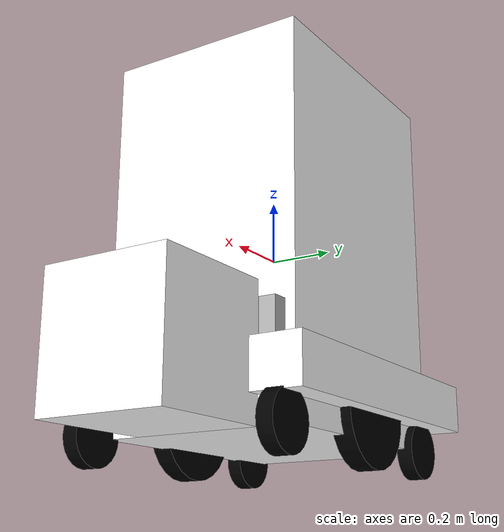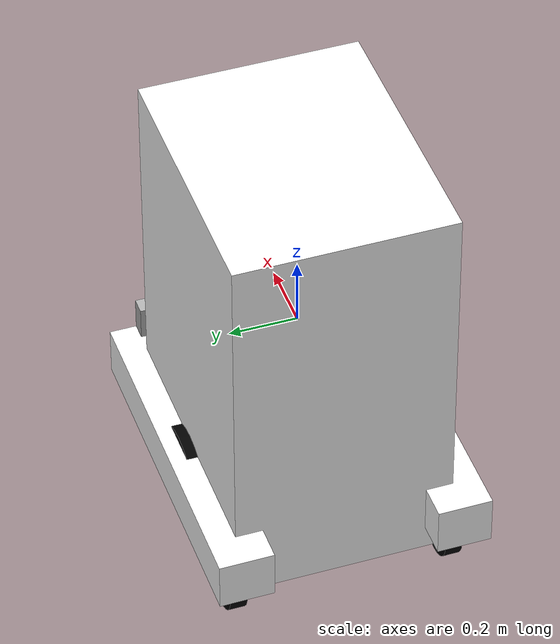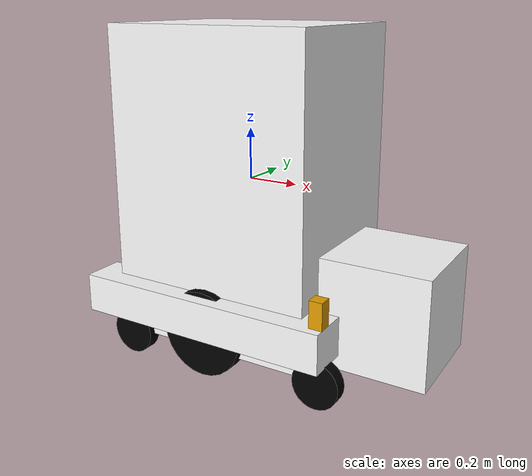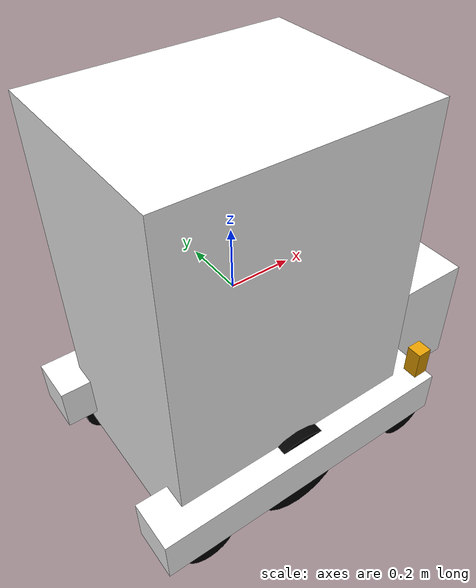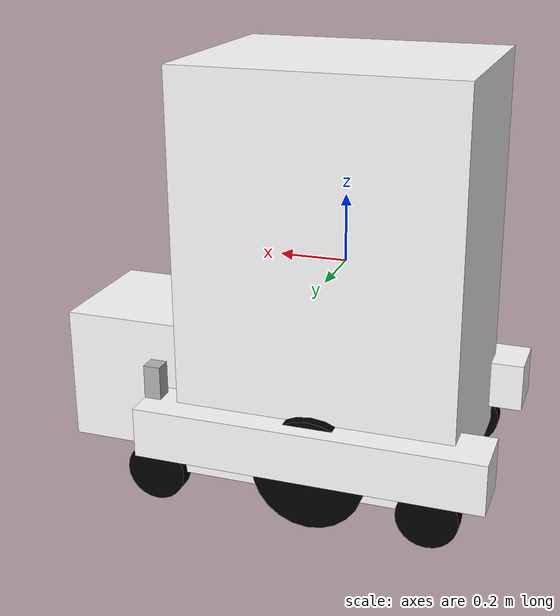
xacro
<?xml version="1.0"?>

<robot xmlns:xacro="http://www.ros.org/wiki/xacro" name="wheelchair">
  <xacro:property name="chair_width" value="0.643" /> <!-- From front wheel right joint to front wheel left joint -->
  <xacro:property name="chair_length" value="0.812" /> <!-- From front wheel joint to back wheel joint -->
  <xacro:property name="chair_height" value="1.191" /> <!-- From front wheel joint to head rest -->
  <xacro:property name="chair_weight" value="10.0" />

  <xacro:property name="legs_width" value="0.4064" />
  <xacro:property name="legs_length" value="0.4064" />
  <xacro:property name="legs_height" value="0.4064" />
  <xacro:property name="legs_weight" value="2.0" />

  <xacro:property name="main_wheel_length" value="0.065" />
  <xacro:property name="main_wheel_radius" value=".165" />
  <xacro:property name="main_wheel_weight" value="2.0" />

  <xacro:property name="small_wheel_radius" value=".089" />
  <xacro:property name="small_wheel_length" value=".05" />
  <xacro:property name="small_wheel_weight" value="1.0" />

  <xacro:macro name="box_intertia" params="height length width weight" >
    <inertia ixx="${1/12 * weight * (height + length)}" ixy="0" ixz="0" iyy="${1/12 * weight * (width + length)}" iyz="0" izz="${1/12 * weight * (width + height)}" />
  </xacro:macro>

  <xacro:macro name="cylinder_intertia" params="length radius weight" >
    <inertia ixx="${1/12 * weight * (3 * radius * radius + length * length)}" ixy="0" ixz="0" iyy="${1/12 * weight * (3 * radius*radius + length*length)}" iyz="0" izz="${1/2 * weight * radius*radius}" />
  </xacro:macro>

  <link name="base_footprint">
    <visual>
      <origin xyz="0 0 0" rpy="0 0 0" />
        <geometry>
          <box size="0.001 0.001 0.001" />
      </geometry>
    </visual>
  </link>

  <joint name="base_footprint_joint" type="fixed">
    <origin xyz=" 0 0 0" rpy="0 0 0"/>
    <parent link="base_footprint"/>
    <child link="base_link"/>
  </joint>

  <link name="base_link">
    <visual>
      <geometry>
        <box size="${chair_length} ${chair_width} ${chair_height}"/>
      </geometry>
      <material name="white">
        <color rgba="1 1 1 1"/>
      </material>
    </visual>
    <collision>
      <geometry>
        <box size="${chair_length} ${chair_width} ${chair_height}"/>
      </geometry>
    </collision>
    <inertial>
      <mass value="${chair_weight}"/>
      <xacro:box_intertia height="${chair_height}" length="${chair_length}" width="${chair_width}" weight="${chair_weight}" />
    </inertial>
  </link>

<!--Legs -->
  <link name="legs">
    <visual>
      <geometry>
        <box size="${legs_length} ${legs_width} ${legs_height}"/>
      </geometry>
      <material name="white">
        <color rgba="1 1 1 1"/>
      </material>
    </visual>
    <collision>
      <geometry>
        <box size="${legs_length} ${legs_width} ${legs_height}"/>
      </geometry>
    </collision>
    <inertial>
      <mass value="${legs_weight}"/>
      <xacro:box_intertia height="${legs_height}" length="${legs_length}" width="${legs_width}" weight="${legs_weight}" />
    </inertial>
  </link>

    <joint name="legs_joint" type="fixed">
    <axis xyz="0 0 0"/>
    <parent link="base_link"/>
    <child link="legs"/>
    <origin rpy="0 0 0" xyz="${chair_length/2 + 0.4064/2} 0 -${chair_height/2 - 0.4064/2}"/> <!--chair_height/4 + chair_height/8 because this is relative to the center of the bar -->
  </joint>

<!--Right Bar -->
  <link name="right_bar">
    <visual>
      <geometry>
        <box size="${chair_length + chair_length/4} ${chair_width/4} ${chair_height/8}"/>
      </geometry>
      <material name="white">
        <color rgba="1 1 1 1"/>
      </material>
    </visual>
    <collision>
      <geometry>
        <box size="${chair_length + chair_length/4} ${chair_width/4} ${chair_height/8}"/>
      </geometry>
    </collision>
    <inertial>
      <mass value="2.0"/>
      <inertia ixx="1e-3" ixy="1e-3" ixz="1e-3" iyy="1e-3" iyz="1e-3" izz="1e-3"/>
    </inertial>
  </link>

  <joint name="right_bar_joint" type="fixed">
    <axis xyz="0 0 0"/>
    <parent link="base_link"/>
    <child link="right_bar"/>
    <origin rpy="0 0 0" xyz="0.0 ${chair_width/2} -${chair_height/4 + chair_height/8}"/> <!--chair_height/4 + chair_height/8 because this is relative to the center of the bar -->
  </joint>

<!--Left Bar -->

  <link name="left_bar">
    <visual>
      <geometry>
        <box size="${chair_length + chair_length/4} ${chair_width/4} ${chair_height/8}"/>
      </geometry>
      <material name="white">
        <color rgba="1 1 1 1"/>
      </material>
    </visual>
    <collision>
      <geometry>
        <box size="${chair_length + chair_length/4} ${chair_width/4} ${chair_height/8}"/>
      </geometry>
    </collision>
    <inertial>
      <mass value="2.0"/>
      <inertia ixx="1e-3" ixy="1e-3" ixz="1e-3" iyy="1e-3" iyz="1e-3" izz="1e-3"/>
    </inertial>
  </link>

  <joint name="left_bar_joint" type="fixed">
    <axis xyz="0 0 0"/>
    <parent link="base_link"/>
    <child link="left_bar"/>
    <origin rpy="0 0 0" xyz="0.0 -${chair_width/2} -${chair_height/4 + chair_height/8}"/> <!--chair_height/4 + chair_height/8 because this is relative to the center of the bar -->
  </joint>

<!--Main Wheels -->
  <joint name="right_main_wheel_joint" type="continuous">
    <axis xyz="0 0 -1"/>
    <parent link="right_bar"/>
    <child link="right_main_wheel"/>
    <origin rpy="1.57075 0 0" xyz="0.0 0.0 -${chair_height/8-0.076}"/>
  </joint>

  <link name="right_main_wheel">
    <visual>
      <geometry>
        <cylinder length="${main_wheel_length}" radius="${main_wheel_radius}"/>
      </geometry>
      <material name="white">
        <color rgba="0 0 0 1"/>
      </material>
    </visual>
    <collision>
      <geometry>
        <cylinder length="${main_wheel_length}" radius="${main_wheel_radius}"/>
      </geometry>
    </collision>
    <inertial>
      <mass value="${main_wheel_weight}"/>
      <xacro:cylinder_intertia length="${main_wheel_length}" radius="${main_wheel_radius}" weight="${main_wheel_weight}" />
    </inertial>
  </link>

  <joint name="left_main_wheel_joint" type="continuous">
    <axis xyz="0 0 -1"/>
    <parent link="left_bar"/>
    <child link="left_main_wheel"/>
    <origin rpy="1.57075 0 0" xyz="0.0 0.0 -${chair_height/8-0.076}"/>
  </joint>

  <link name="left_main_wheel">
    <visual>
      <geometry>
        <cylinder length="${main_wheel_length}" radius="${main_wheel_radius}"/>
      </geometry>
      <material name="white">
        <color rgba="0 0 0 1"/>
      </material>
    </visual>
    <collision>
      <geometry>
        <cylinder length="${main_wheel_length}" radius="${main_wheel_radius}"/>
      </geometry>
    </collision>
    <inertial>
      <mass value="${main_wheel_weight}"/>
      <xacro:cylinder_intertia length="${main_wheel_length}" radius="${main_wheel_radius}" weight="${main_wheel_weight}" />
    </inertial>
  </link>

<!--Laser Scanners -->

  <link name="right_scanner">
    <visual>
      <origin xyz="0.0 0 0" rpy="0 0 0"/>
      <geometry>
        <box size="0.05 0.05 0.1"/>
      </geometry>
    </visual>
    <collision>
      <geometry>
        <box size="0.05 0.05 0.1"/>
      </geometry>
    </collision>
    <inertial>
      <mass value="1e-5" />
      <inertia ixx="1e-3" ixy="0" ixz="0" iyy="1e-3" iyz="0" izz="1e-3" />
    </inertial>
  </link>

  <joint name="right_scanner_joint" type="fixed">
    <axis xyz="0 0 0" />
    <origin xyz="${chair_length/2 - 0.05/2 + chair_length/8} -${0.05/2} ${chair_height/16 + 0.05}" rpy="0 0 0"/>
    <parent link="right_bar"/>
    <child link="right_scanner"/>
  </joint>

  <link name="left_scanner">
    <visual>
      <origin xyz="0.0 0 0" rpy="0 0 0"/>
      <geometry>
        <box size="0.05 0.05 0.1"/>
      </geometry>
    </visual>
    <collision>
      <geometry>
        <box size="0.05 0.05 0.1"/>
      </geometry>
    </collision>
    <inertial>
      <mass value="1e-5" />
      <inertia ixx="1e-3" ixy="0" ixz="0" iyy="1e-3" iyz="0" izz="1e-3" />
    </inertial>
  </link>

  <joint name="left_scanner_joint" type="fixed">
    <axis xyz="0 0 0" />
    <origin xyz="${chair_length/2 - 0.05/2 + chair_length/8} -${0.05/2} ${chair_height/16 + 0.05}" rpy="0 0 -3.14159265359"/>
    <parent link="left_bar"/>
    <child link="left_scanner"/>
  </joint>

<!--Front Wheels -->

  <link name="front_right_swivel">
    <visual>
      <geometry>
        <cylinder length="0.065" radius="0.01"/>
      </geometry>
      <material name="white">
        <color rgba="0 0 0 1"/>
      </material>
    </visual>
    <collision>
      <geometry>
        <cylinder length="0.065" radius="0.01"/>
      </geometry>
    </collision>
    <inertial>
      <mass value="1.0"/>
      <inertia ixx="1e-3" ixy="1e-3" ixz="1e-3" iyy="1e-3" iyz="1e-3" izz="1e-3"/>
    </inertial>
  </link>

   <joint name="front_right_swivel_joint" type="continuous">
    <axis xyz="0 0 1"/>
    <parent link="right_bar"/>
    <child link="front_right_swivel"/>
    <origin rpy="0 0 0" xyz="-${chair_length/2} 0.0 -${chair_height/8}"/>
    <dynamics damping="0.0" friction="0.5" />
  </joint>

  <joint name="front_right_wheel_joint" type="continuous">
    <axis xyz="0 0 1"/>
    <parent link="front_right_swivel"/>
    <child link="front_right_wheel"/>
    <origin rpy="1.57075 0 0" xyz="0.065 0 0"/>
    <dynamics damping="1.0" friction="1.5" />
  </joint>

  <link name="front_right_wheel">
    <visual>
      <geometry>
        <cylinder length="${small_wheel_length}" radius="${small_wheel_radius}"/>
      </geometry>
      <material name="white">
        <color rgba="0 0 0 1"/>
      </material>
    </visual>
    <collision>
      <geometry>
        <cylinder length="${small_wheel_length}" radius="${small_wheel_radius}"/>
      </geometry>
      <surface>
        <friction>
          <ode>
            <mu>1.0</mu>
            <mu2>1.0</mu2>
          </ode>
        </friction>
      </surface>
    </collision>
    <inertial>
      <mass value="${small_wheel_weight}"/>
      <xacro:cylinder_intertia length="${small_wheel_length}" radius="${small_wheel_radius}" weight="${small_wheel_weight}" />
    </inertial>
  </link>

  <link name="front_left_swivel">
    <visual>
      <geometry>
        <cylinder length="0.065" radius="0.01"/>
      </geometry>
      <material name="white">
        <color rgba="0 0 0 1"/>
      </material>
    </visual>
    <collision>
      <geometry>
        <cylinder length="0.065" radius="0.01"/>
      </geometry>
    </collision>
    <inertial>
      <mass value="1.0"/>
      <inertia ixx="1e-3" ixy="1e-3" ixz="1e-3" iyy="1e-3" iyz="1e-3" izz="1e-3"/>
    </inertial>
  </link>

   <joint name="front_left_swivel_joint" type="continuous">
    <axis xyz="0 0 1"/>
    <parent link="left_bar"/>
    <child link="front_left_swivel"/>
    <origin rpy="0 0 0" xyz="-${chair_length/2} 0.0 -${chair_height/8}"/>
    <dynamics damping="0.0" friction="0.5" />
  </joint>

  <joint name="front_left_wheel_joint" type="continuous">
    <axis xyz="0 0 1"/>
    <parent link="front_left_swivel"/>
    <child link="front_left_wheel"/>
    <origin rpy="1.57075 0 0" xyz="0.065 0 0"/>
    <dynamics damping="0" friction="0.5" />
  </joint>

  <link name="front_left_wheel">
    <visual>
      <geometry>
        <cylinder length="0.05" radius="${small_wheel_radius}"/>
      </geometry>
      <material name="white">
        <color rgba="0 0 0 1"/>
      </material>
    </visual>
    <collision>
      <geometry>
        <cylinder length="0.05" radius="${small_wheel_radius}"/>
      </geometry>
      <surface>
        <friction>
          <ode>
            <mu>1.0</mu>
            <mu2>1.0</mu2>
          </ode>
        </friction>
      </surface>
    </collision>
    <inertial>
      <mass value="${small_wheel_weight}"/>
      <xacro:cylinder_intertia length="${small_wheel_length}" radius="${small_wheel_radius}" weight="${small_wheel_weight}" />
    </inertial>
  </link>

<!--Rear Wheels -->

  <link name="rear_right_swivel">
    <visual>
      <geometry>
        <cylinder length="0.065" radius="0.01"/>
      </geometry>
      <material name="white">
        <color rgba="0 0 0 1"/>
      </material>
    </visual>
    <collision>
      <geometry>
        <cylinder length="0.065" radius="0.01"/>
      </geometry>
    </collision>
    <inertial>
      <mass value="1.0"/>
      <inertia ixx="1e-3" ixy="1e-3" ixz="1e-3" iyy="1e-3" iyz="1e-3" izz="1e-3"/>
    </inertial>
  </link>

   <joint name="rear_right_swivel_joint" type="continuous">
    <axis xyz="0 0 1"/>
    <parent link="right_bar"/>
    <child link="rear_right_swivel"/>
    <origin rpy="0 0 0" xyz="${chair_length/2} 0.0 -${chair_height/8}"/>
    <dynamics damping="0.0" friction="0.5" />
  </joint>

  <joint name="rear_right_wheel_joint" type="continuous">
    <axis xyz="0 0 1"/>
    <parent link="rear_right_swivel"/>
    <child link="rear_right_wheel"/>
    <origin rpy="1.57075 0 0" xyz="0.065 0 0"/>
    <dynamics damping="0" friction="0.5" />
  </joint>

  <link name="rear_right_wheel">
    <visual>
      <geometry>
        <cylinder length="0.05" radius="${small_wheel_radius}"/>
      </geometry>
      <material name="white">
        <color rgba="0 0 0 1"/>
      </material>
    </visual>
    <collision>
      <geometry>
        <cylinder length="0.05" radius="${small_wheel_radius}"/>
      </geometry>
      <surface>
        <friction>
          <ode>
            <mu>1.0</mu>
            <mu2>1.0</mu2>
          </ode>
        </friction>
      </surface>
    </collision>
    <inertial>
      <mass value="${small_wheel_weight}"/>
      <xacro:cylinder_intertia length="${small_wheel_length}" radius="${small_wheel_radius}" weight="${small_wheel_weight}" />
    </inertial>
  </link>

  <link name="rear_left_swivel">
    <visual>
      <geometry>
        <cylinder length="0.065" radius="0.01"/>
      </geometry>
      <material name="white">
        <color rgba="0 0 0 1"/>
      </material>
    </visual>
    <collision>
      <geometry>
        <cylinder length="0.065" radius="0.01"/>
      </geometry>
    </collision>
    <inertial>
      <mass value="1.0"/>
      <inertia ixx="1e-3" ixy="1e-3" ixz="1e-3" iyy="1e-3" iyz="1e-3" izz="1e-3"/>
    </inertial>
  </link>

   <joint name="rear_left_swivel_joint" type="continuous">
    <axis xyz="0 0 1"/>
    <parent link="left_bar"/>
    <child link="rear_left_swivel"/>
    <origin rpy="0 0 0" xyz="${chair_length/2} 0.0 -${chair_height/8}"/>
    <dynamics damping="0.0" friction="0.5" />
  </joint>

  <joint name="rear_left_wheel_joint" type="continuous">
    <axis xyz="0 0 1"/>
    <parent link="rear_left_swivel"/>
    <child link="rear_left_wheel"/>
    <origin rpy="1.57075 0 0" xyz="0.065 0 0"/>
    <dynamics damping="0" friction="0.5" />
  </joint>

  <link name="rear_left_wheel">
    <visual>
      <geometry>
        <cylinder length="0.05" radius="${small_wheel_radius}"/>
      </geometry>
      <material name="white">
        <color rgba="0 0 0 1"/>
      </material>
    </visual>
    <collision>
      <geometry>
        <cylinder length="0.05" radius="${small_wheel_radius}"/>
      </geometry>
      <surface>
        <friction>
          <ode>
            <mu>1.0</mu>
            <mu2>1.0</mu2>
          </ode>
        </friction>
      </surface>
    </collision>
    <inertial>
      <mass value="${small_wheel_weight}"/>
      <xacro:cylinder_intertia length="${small_wheel_length}" radius="${small_wheel_radius}" weight="${small_wheel_weight}" />
    </inertial>
  </link>

<gazebo>
  <plugin name="differential_drive_controller" filename="libgazebo_ros_diff_drive.so">
    <alwaysOn>true</alwaysOn>
    <updateRate>50</updateRate>
    <leftJoint>left_main_wheel_joint</leftJoint>
    <rightJoint>right_main_wheel_joint</rightJoint>
    <wheelSeparation>${chair_width}</wheelSeparation>
    <wheelDiameter>${main_wheel_radius*2}</wheelDiameter>
    <torque>20</torque>
    <commandTopic>cmd_vel</commandTopic>
    <odometryTopic>odom</odometryTopic>
    <odometryFrame>odom</odometryFrame>
    <robotBaseFrame>base_footprint</robotBaseFrame>
  </plugin>
</gazebo>

<gazebo reference="right_scanner">
    <sensor type="gpu_ray" name="head_hokuyo_sensor">
      <pose>0 0 0 0 0 0</pose>
      <visualize>false</visualize>
      <update_rate>40</update_rate>
      <ray>
        <scan>
          <horizontal>
            <samples>720</samples>
            <resolution>1</resolution>
            <min_angle>0</min_angle>
            <max_angle>3.14159265359</max_angle>
          </horizontal>
        </scan>
        <range>
          <min>0.10</min>
          <max>30.0</max>
          <resolution>0.01</resolution>
        </range>
        <noise>
          <type>gaussian</type>
          <mean>0.0</mean>
          <stddev>0.01</stddev>
        </noise>
      </ray>
      <plugin name="gazebo_ros_head_hokuyo_controller" filename="libgazebo_ros_gpu_laser.so">
        <topicName>/wheelchair_lasers/right</topicName>
        <frameName>right_scanner</frameName>
      </plugin>
    </sensor>
  </gazebo>

<gazebo reference="left_scanner">
    <sensor type="gpu_ray" name="head_hokuyo_sensor2">
      <pose>0 0 0 0 0 0</pose>
      <visualize>true</visualize>
      <update_rate>40</update_rate>
      <ray>
        <scan>
          <horizontal>
            <samples>720</samples>
            <resolution>1</resolution>
            <min_angle>0</min_angle>
            <max_angle>3.14159265359</max_angle>
          </horizontal>
        </scan>
        <range>
          <min>0.10</min>
          <max>30.0</max>
          <resolution>0.01</resolution>
        </range>
        <noise>
          <type>gaussian</type>

          <mean>0.0</mean>
          <stddev>0.01</stddev>
        </noise>
      </ray>
      <plugin name="gazebo_ros_head_hokuyo_controller2" filename="libgazebo_ros_gpu_laser.so">
        <topicName>/wheelchair_lasers/left</topicName>
        <frameName>left_scanner</frameName>
      </plugin>
    </sensor>
  </gazebo>

</robot>
